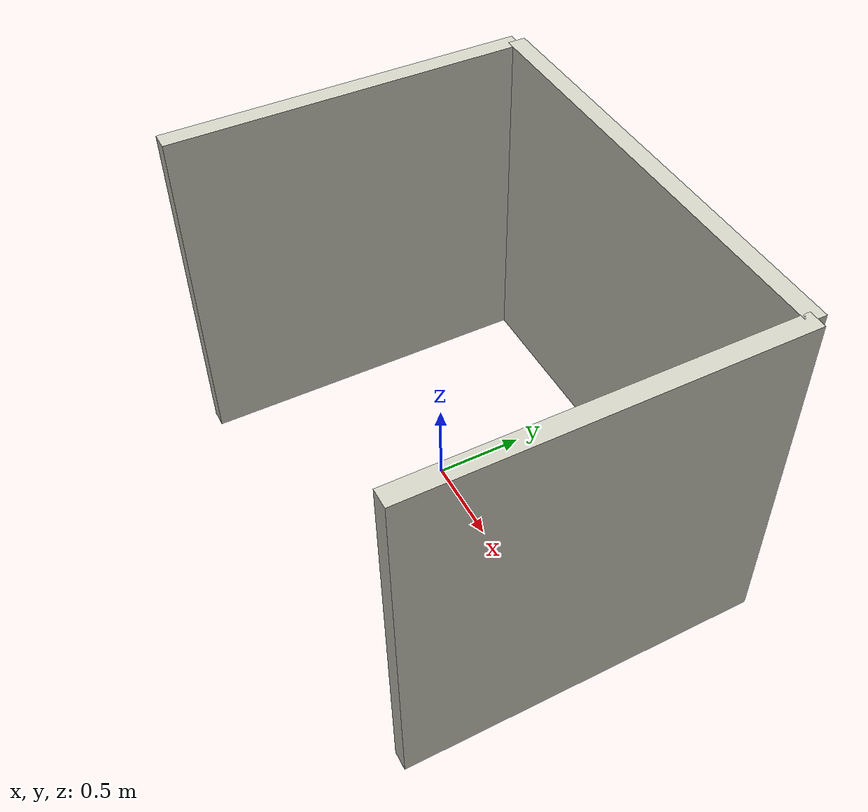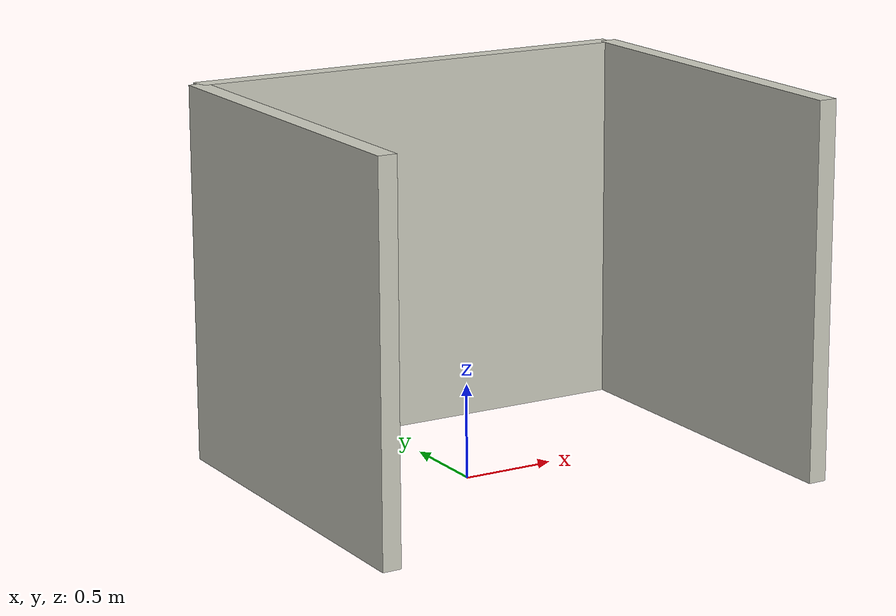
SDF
<?xml version='1.0'?>
<sdf version='1.4'>
  <model name='Cage'>
    <link name='Wall_1'>
      <collision name='Wall_1_Collision'>
        <pose>-1 0 1 0 0 0</pose>
        <geometry>
          <box>
            <size>0.1 2 2</size>
          </box>
        </geometry>
      </collision>
      <visual name='Wall_1_Visual'>
        <pose>-1 0 1 0 0 0</pose>
        <geometry>
          <box>
            <size>0.1 2 2</size>
          </box>
        </geometry>
        <material>
          <script>
            <uri>file://media/materials/scripts/gazebo.material</uri>
            <name>Gazebo/PaintedWall</name>
          </script>
        </material>
      </visual>
    </link>
    <link name='Wall_2'>
      <collision name='Wall_2_Collision'>
        <pose>0.25 1 1 0 0 0</pose>
        <geometry>
          <box>
            <size>2.5 0.1 2</size>
          </box>
        </geometry>
      </collision>
      <visual name='Wall_2_Visual'>
        <pose>0.25 1 1 0 0 0</pose>
        <geometry>
          <box>
            <size>2.5 0.1 2</size>
          </box>
        </geometry>
        <material>
          <script>
            <uri>file://media/materials/scripts/gazebo.material</uri>
            <name>Gazebo/PaintedWall</name>
          </script>
        </material>
      </visual>
    </link>
    <link name='Wall_3'>
      <collision name='Wall_3_Collision'>
        <pose>1.5 0 1 0 0 0</pose>
        <geometry>
          <box>
            <size>0.1 2 2</size>
          </box>
        </geometry>
      </collision>
      <visual name='Wall_3_Visual'>
        <pose>1.5 0 1 0 0 0</pose>
        <geometry>
          <box>
            <size>0.1 2 2</size>
          </box>
        </geometry>
        <material>
          <script>
            <uri>file://media/materials/scripts/gazebo.material</uri>
            <name>Gazebo/PaintedWall</name>
          </script>
        </material>
      </visual>
    </link>
    <static>1</static>
  </model>
</sdf>
